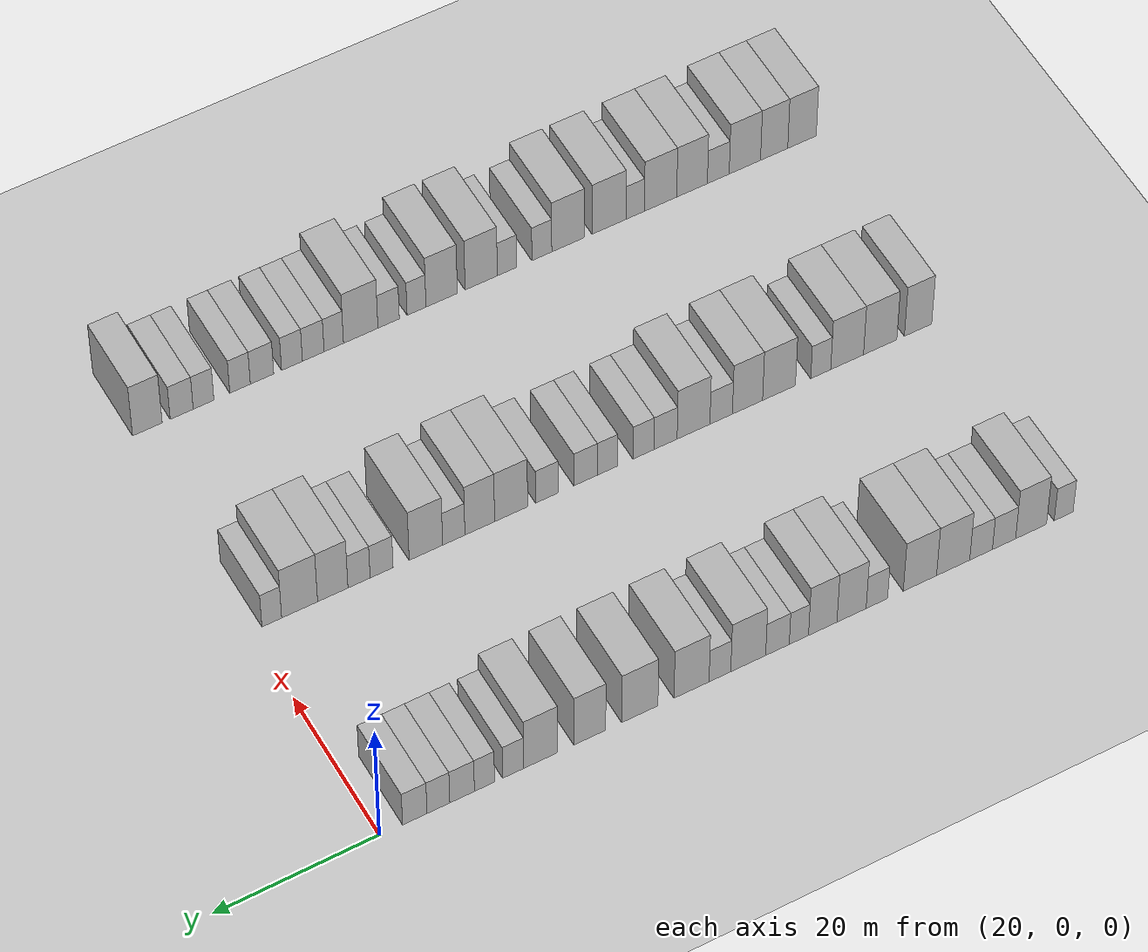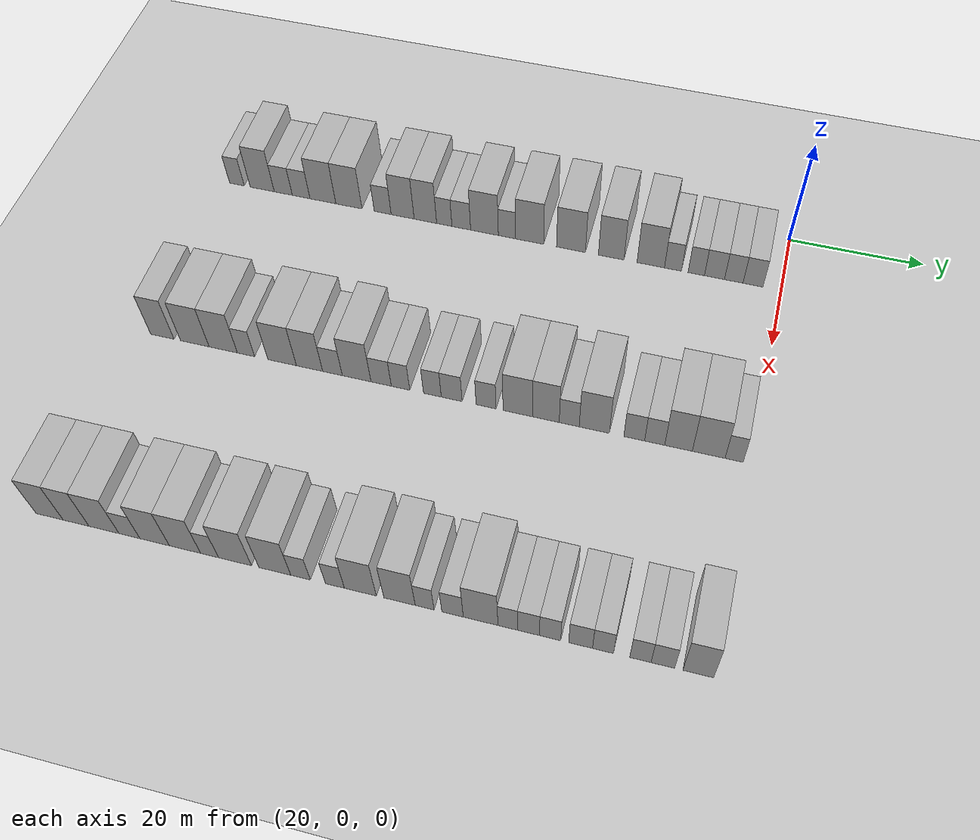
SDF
<sdf version="1.6">
 <world name="default">
  <include><name>ground_plane_1</name><uri>model://HANNAS_ground_plane</uri></include>
  <model name="building_50">
   <static>1</static>
   <pose>25.0000 -85.5815 0 0.000000 0.000000 0.000000</pose>
   <link name="link">
    <pose>0 0 3.00 0 0 0</pose>
    <collision name="collision"><geometry><box><size>10.0000 2.4582 6.0000</size></box></geometry></collision>
    <visual name="visual">
     <cast_shadows>0</cast_shadows>
     <geometry><box><size>10.0000 2.4582 6.0000</size></box></geometry>
     <material>
      <script>
       <uri>model://HANNAS_wall/materials/scripts</uri>
       <uri>model://HANNAS_wall/materials/textures</uri>
       <name>vrc/HANNAS_wall</name>
      </script>
     </material>
    </visual>
   </link>
  </model>
  <model name="building_51">
   <static>1</static>
   <pose>25.0000 -81.3467 0 0.000000 0.000000 0.000000</pose>
   <link name="link">
    <pose>0 0 4.50 0 0 0</pose>
    <collision name="collision"><geometry><box><size>10.0000 4.0113 9.0000</size></box></geometry></collision>
    <visual name="visual">
     <cast_shadows>0</cast_shadows>
     <geometry><box><size>10.0000 4.0113 9.0000</size></box></geometry>
     <material>
      <script>
       <uri>model://HANNAS_wall/materials/scripts</uri>
       <uri>model://HANNAS_wall/materials/textures</uri>
       <name>vrc/HANNAS_wall</name>
      </script>
     </material>
    </visual>
   </link>
  </model>
  <model name="building_52">
   <static>1</static>
   <pose>25.0000 -77.8448 0 0.000000 0.000000 0.000000</pose>
   <link name="link">
    <pose>0 0 3.00 0 0 0</pose>
    <collision name="collision"><geometry><box><size>10.0000 2.9925 6.0000</size></box></geometry></collision>
    <visual name="visual">
     <cast_shadows>0</cast_shadows>
     <geometry><box><size>10.0000 2.9925 6.0000</size></box></geometry>
     <material>
      <script>
       <uri>model://HANNAS_wall/materials/scripts</uri>
       <uri>model://HANNAS_wall/materials/textures</uri>
       <name>vrc/HANNAS_wall</name>
      </script>
     </material>
    </visual>
   </link>
  </model>
  <model name="building_53">
   <static>1</static>
   <pose>25.0000 -74.8836 0 0.000000 0.000000 0.000000</pose>
   <link name="link">
    <pose>0 0 3.00 0 0 0</pose>
    <collision name="collision"><geometry><box><size>10.0000 2.9299 6.0000</size></box></geometry></collision>
    <visual name="visual">
     <cast_shadows>0</cast_shadows>
     <geometry><box><size>10.0000 2.9299 6.0000</size></box></geometry>
     <material>
      <script>
       <uri>model://HANNAS_wall/materials/scripts</uri>
       <uri>model://HANNAS_wall/materials/textures</uri>
       <name>vrc/HANNAS_wall</name>
      </script>
     </material>
    </visual>
   </link>
  </model>
  <model name="building_54">
   <static>1</static>
   <pose>25.0000 -71.2896 0 0.000000 0.000000 0.000000</pose>
   <link name="link">
    <pose>0 0 4.50 0 0 0</pose>
    <collision name="collision"><geometry><box><size>10.0000 4.2580 9.0000</size></box></geometry></collision>
    <visual name="visual">
     <cast_shadows>0</cast_shadows>
     <geometry><box><size>10.0000 4.2580 9.0000</size></box></geometry>
     <material>
      <script>
       <uri>model://HANNAS_wall/materials/scripts</uri>
       <uri>model://HANNAS_wall/materials/textures</uri>
       <name>vrc/HANNAS_wall</name>
      </script>
     </material>
    </visual>
   </link>
  </model>
  <model name="building_55">
   <static>1</static>
   <pose>25.0000 -67.0277 0 0.000000 0.000000 0.000000</pose>
   <link name="link">
    <pose>0 0 4.50 0 0 0</pose>
    <collision name="collision"><geometry><box><size>10.0000 4.2658 9.0000</size></box></geometry></collision>
    <visual name="visual">
     <cast_shadows>0</cast_shadows>
     <geometry><box><size>10.0000 4.2658 9.0000</size></box></geometry>
     <material>
      <script>
       <uri>model://HANNAS_wall/materials/scripts</uri>
       <uri>model://HANNAS_wall/materials/textures</uri>
       <name>vrc/HANNAS_wall</name>
      </script>
     </material>
    </visual>
   </link>
  </model>
  <model name="building_56">
   <static>1</static>
   <pose>25.0000 -61.5255 0 0.000000 0.000000 0.000000</pose>
   <link name="link">
    <pose>0 0 3.00 0 0 0</pose>
    <collision name="collision"><geometry><box><size>10.0000 2.7386 6.0000</size></box></geometry></collision>
    <visual name="visual">
     <cast_shadows>0</cast_shadows>
     <geometry><box><size>10.0000 2.7386 6.0000</size></box></geometry>
     <material>
      <script>
       <uri>model://HANNAS_wall/materials/scripts</uri>
       <uri>model://HANNAS_wall/materials/textures</uri>
       <name>vrc/HANNAS_wall</name>
      </script>
     </material>
    </visual>
   </link>
  </model>
  <model name="building_57">
   <static>1</static>
   <pose>25.0000 -58.3049 0 0.000000 0.000000 0.000000</pose>
   <link name="link">
    <pose>0 0 4.50 0 0 0</pose>
    <collision name="collision"><geometry><box><size>10.0000 3.7026 9.0000</size></box></geometry></collision>
    <visual name="visual">
     <cast_shadows>0</cast_shadows>
     <geometry><box><size>10.0000 3.7026 9.0000</size></box></geometry>
     <material>
      <script>
       <uri>model://HANNAS_wall/materials/scripts</uri>
       <uri>model://HANNAS_wall/materials/textures</uri>
       <name>vrc/HANNAS_wall</name>
      </script>
     </material>
    </visual>
   </link>
  </model>
  <model name="building_58">
   <static>1</static>
   <pose>25.0000 -54.6498 0 0.000000 0.000000 0.000000</pose>
   <link name="link">
    <pose>0 0 4.50 0 0 0</pose>
    <collision name="collision"><geometry><box><size>10.0000 3.6076 9.0000</size></box></geometry></collision>
    <visual name="visual">
     <cast_shadows>0</cast_shadows>
     <geometry><box><size>10.0000 3.6076 9.0000</size></box></geometry>
     <material>
      <script>
       <uri>model://HANNAS_wall/materials/scripts</uri>
       <uri>model://HANNAS_wall/materials/textures</uri>
       <name>vrc/HANNAS_wall</name>
      </script>
     </material>
    </visual>
   </link>
  </model>
  <model name="building_59">
   <static>1</static>
   <pose>25.0000 -51.6305 0 0.000000 0.000000 0.000000</pose>
   <link name="link">
    <pose>0 0 3.00 0 0 0</pose>
    <collision name="collision"><geometry><box><size>10.0000 2.4311 6.0000</size></box></geometry></collision>
    <visual name="visual">
     <cast_shadows>0</cast_shadows>
     <geometry><box><size>10.0000 2.4311 6.0000</size></box></geometry>
     <material>
      <script>
       <uri>model://HANNAS_wall/materials/scripts</uri>
       <uri>model://HANNAS_wall/materials/textures</uri>
       <name>vrc/HANNAS_wall</name>
      </script>
     </material>
    </visual>
   </link>
  </model>
  <model name="building_60">
   <static>1</static>
   <pose>25.0000 -48.9285 0 0.000000 0.000000 0.000000</pose>
   <link name="link">
    <pose>0 0 3.00 0 0 0</pose>
    <collision name="collision"><geometry><box><size>10.0000 2.9728 6.0000</size></box></geometry></collision>
    <visual name="visual">
     <cast_shadows>0</cast_shadows>
     <geometry><box><size>10.0000 2.9728 6.0000</size></box></geometry>
     <material>
      <script>
       <uri>model://HANNAS_wall/materials/scripts</uri>
       <uri>model://HANNAS_wall/materials/textures</uri>
       <name>vrc/HANNAS_wall</name>
      </script>
     </material>
    </visual>
   </link>
  </model>
  <model name="building_61">
   <static>1</static>
   <pose>25.0000 -45.2490 0 0.000000 0.000000 0.000000</pose>
   <link name="link">
    <pose>0 0 4.50 0 0 0</pose>
    <collision name="collision"><geometry><box><size>10.0000 4.3862 9.0000</size></box></geometry></collision>
    <visual name="visual">
     <cast_shadows>0</cast_shadows>
     <geometry><box><size>10.0000 4.3862 9.0000</size></box></geometry>
     <material>
      <script>
       <uri>model://HANNAS_wall/materials/scripts</uri>
       <uri>model://HANNAS_wall/materials/textures</uri>
       <name>vrc/HANNAS_wall</name>
      </script>
     </material>
    </visual>
   </link>
  </model>
  <model name="building_62">
   <static>1</static>
   <pose>25.0000 -41.6981 0 0.000000 0.000000 0.000000</pose>
   <link name="link">
    <pose>0 0 3.00 0 0 0</pose>
    <collision name="collision"><geometry><box><size>10.0000 2.7156 6.0000</size></box></geometry></collision>
    <visual name="visual">
     <cast_shadows>0</cast_shadows>
     <geometry><box><size>10.0000 2.7156 6.0000</size></box></geometry>
     <material>
      <script>
       <uri>model://HANNAS_wall/materials/scripts</uri>
       <uri>model://HANNAS_wall/materials/textures</uri>
       <name>vrc/HANNAS_wall</name>
      </script>
     </material>
    </visual>
   </link>
  </model>
  <model name="building_63">
   <static>1</static>
   <pose>25.0000 -38.1528 0 0.000000 0.000000 0.000000</pose>
   <link name="link">
    <pose>0 0 4.50 0 0 0</pose>
    <collision name="collision"><geometry><box><size>10.0000 4.3749 9.0000</size></box></geometry></collision>
    <visual name="visual">
     <cast_shadows>0</cast_shadows>
     <geometry><box><size>10.0000 4.3749 9.0000</size></box></geometry>
     <material>
      <script>
       <uri>model://HANNAS_wall/materials/scripts</uri>
       <uri>model://HANNAS_wall/materials/textures</uri>
       <name>vrc/HANNAS_wall</name>
      </script>
     </material>
    </visual>
   </link>
  </model>
  <model name="building_64">
   <static>1</static>
   <pose>25.0000 -31.7275 0 0.000000 0.000000 0.000000</pose>
   <link name="link">
    <pose>0 0 4.50 0 0 0</pose>
    <collision name="collision"><geometry><box><size>10.0000 4.4757 9.0000</size></box></geometry></collision>
    <visual name="visual">
     <cast_shadows>0</cast_shadows>
     <geometry><box><size>10.0000 4.4757 9.0000</size></box></geometry>
     <material>
      <script>
       <uri>model://HANNAS_wall/materials/scripts</uri>
       <uri>model://HANNAS_wall/materials/textures</uri>
       <name>vrc/HANNAS_wall</name>
      </script>
     </material>
    </visual>
   </link>
  </model>
  <model name="building_65">
   <static>1</static>
   <pose>25.0000 -25.5301 0 0.000000 0.000000 0.000000</pose>
   <link name="link">
    <pose>0 0 4.50 0 0 0</pose>
    <collision name="collision"><geometry><box><size>10.0000 3.9191 9.0000</size></box></geometry></collision>
    <visual name="visual">
     <cast_shadows>0</cast_shadows>
     <geometry><box><size>10.0000 3.9191 9.0000</size></box></geometry>
     <material>
      <script>
       <uri>model://HANNAS_wall/materials/scripts</uri>
       <uri>model://HANNAS_wall/materials/textures</uri>
       <name>vrc/HANNAS_wall</name>
      </script>
     </material>
    </visual>
   </link>
  </model>
  <model name="building_66">
   <static>1</static>
   <pose>25.0000 -19.4896 0 0.000000 0.000000 0.000000</pose>
   <link name="link">
    <pose>0 0 4.50 0 0 0</pose>
    <collision name="collision"><geometry><box><size>10.0000 4.1618 9.0000</size></box></geometry></collision>
    <visual name="visual">
     <cast_shadows>0</cast_shadows>
     <geometry><box><size>10.0000 4.1618 9.0000</size></box></geometry>
     <material>
      <script>
       <uri>model://HANNAS_wall/materials/scripts</uri>
       <uri>model://HANNAS_wall/materials/textures</uri>
       <name>vrc/HANNAS_wall</name>
      </script>
     </material>
    </visual>
   </link>
  </model>
  <model name="building_67">
   <static>1</static>
   <pose>25.0000 -16.1266 0 0.000000 0.000000 0.000000</pose>
   <link name="link">
    <pose>0 0 3.00 0 0 0</pose>
    <collision name="collision"><geometry><box><size>10.0000 2.5642 6.0000</size></box></geometry></collision>
    <visual name="visual">
     <cast_shadows>0</cast_shadows>
     <geometry><box><size>10.0000 2.5642 6.0000</size></box></geometry>
     <material>
      <script>
       <uri>model://HANNAS_wall/materials/scripts</uri>
       <uri>model://HANNAS_wall/materials/textures</uri>
       <name>vrc/HANNAS_wall</name>
      </script>
     </material>
    </visual>
   </link>
  </model>
  <model name="building_68">
   <static>1</static>
   <pose>25.0000 -12.6173 0 0.000000 0.000000 0.000000</pose>
   <link name="link">
    <pose>0 0 3.00 0 0 0</pose>
    <collision name="collision"><geometry><box><size>10.0000 2.4545 6.0000</size></box></geometry></collision>
    <visual name="visual">
     <cast_shadows>0</cast_shadows>
     <geometry><box><size>10.0000 2.4545 6.0000</size></box></geometry>
     <material>
      <script>
       <uri>model://HANNAS_wall/materials/scripts</uri>
       <uri>model://HANNAS_wall/materials/textures</uri>
       <name>vrc/HANNAS_wall</name>
      </script>
     </material>
    </visual>
   </link>
  </model>
  <model name="building_69">
   <static>1</static>
   <pose>25.0000 -9.8904 0 0.000000 0.000000 0.000000</pose>
   <link name="link">
    <pose>0 0 3.00 0 0 0</pose>
    <collision name="collision"><geometry><box><size>10.0000 2.9993 6.0000</size></box></geometry></collision>
    <visual name="visual">
     <cast_shadows>0</cast_shadows>
     <geometry><box><size>10.0000 2.9993 6.0000</size></box></geometry>
     <material>
      <script>
       <uri>model://HANNAS_wall/materials/scripts</uri>
       <uri>model://HANNAS_wall/materials/textures</uri>
       <name>vrc/HANNAS_wall</name>
      </script>
     </material>
    </visual>
   </link>
  </model>
  <model name="building_70">
   <static>1</static>
   <pose>25.0000 -7.0107 0 0.000000 0.000000 0.000000</pose>
   <link name="link">
    <pose>0 0 3.00 0 0 0</pose>
    <collision name="collision"><geometry><box><size>10.0000 2.7602 6.0000</size></box></geometry></collision>
    <visual name="visual">
     <cast_shadows>0</cast_shadows>
     <geometry><box><size>10.0000 2.7602 6.0000</size></box></geometry>
     <material>
      <script>
       <uri>model://HANNAS_wall/materials/scripts</uri>
       <uri>model://HANNAS_wall/materials/textures</uri>
       <name>vrc/HANNAS_wall</name>
      </script>
     </material>
    </visual>
   </link>
  </model>
  <model name="building_71">
   <static>1</static>
   <pose>25.0000 -4.1523 0 0.000000 0.000000 0.000000</pose>
   <link name="link">
    <pose>0 0 3.00 0 0 0</pose>
    <collision name="collision"><geometry><box><size>10.0000 2.9565 6.0000</size></box></geometry></collision>
    <visual name="visual">
     <cast_shadows>0</cast_shadows>
     <geometry><box><size>10.0000 2.9565 6.0000</size></box></geometry>
     <material>
      <script>
       <uri>model://HANNAS_wall/materials/scripts</uri>
       <uri>model://HANNAS_wall/materials/textures</uri>
       <name>vrc/HANNAS_wall</name>
      </script>
     </material>
    </visual>
   </link>
  </model>
  <model name="building_187">
   <static>1</static>
   <pose>55.0000 -84.8560 0 0.000000 0.000000 0.000000</pose>
   <link name="link">
    <pose>0 0 4.50 0 0 0</pose>
    <collision name="collision"><geometry><box><size>10.0000 3.6039 9.0000</size></box></geometry></collision>
    <visual name="visual">
     <cast_shadows>0</cast_shadows>
     <geometry><box><size>10.0000 3.6039 9.0000</size></box></geometry>
     <material>
      <script>
       <uri>model://HANNAS_wall/materials/scripts</uri>
       <uri>model://HANNAS_wall/materials/textures</uri>
       <name>vrc/HANNAS_wall</name>
      </script>
     </material>
    </visual>
   </link>
  </model>
  <model name="building_188">
   <static>1</static>
   <pose>55.0000 -79.8645 0 0.000000 0.000000 0.000000</pose>
   <link name="link">
    <pose>0 0 4.50 0 0 0</pose>
    <collision name="collision"><geometry><box><size>10.0000 4.3790 9.0000</size></box></geometry></collision>
    <visual name="visual">
     <cast_shadows>0</cast_shadows>
     <geometry><box><size>10.0000 4.3790 9.0000</size></box></geometry>
     <material>
      <script>
       <uri>model://HANNAS_wall/materials/scripts</uri>
       <uri>model://HANNAS_wall/materials/textures</uri>
       <name>vrc/HANNAS_wall</name>
      </script>
     </material>
    </visual>
   </link>
  </model>
  <model name="building_189">
   <static>1</static>
   <pose>55.0000 -75.5214 0 0.000000 0.000000 0.000000</pose>
   <link name="link">
    <pose>0 0 4.50 0 0 0</pose>
    <collision name="collision"><geometry><box><size>10.0000 4.3071 9.0000</size></box></geometry></collision>
    <visual name="visual">
     <cast_shadows>0</cast_shadows>
     <geometry><box><size>10.0000 4.3071 9.0000</size></box></geometry>
     <material>
      <script>
       <uri>model://HANNAS_wall/materials/scripts</uri>
       <uri>model://HANNAS_wall/materials/textures</uri>
       <name>vrc/HANNAS_wall</name>
      </script>
     </material>
    </visual>
   </link>
  </model>
  <model name="building_190">
   <static>1</static>
   <pose>55.0000 -72.0653 0 0.000000 0.000000 0.000000</pose>
   <link name="link">
    <pose>0 0 3.00 0 0 0</pose>
    <collision name="collision"><geometry><box><size>10.0000 2.6052 6.0000</size></box></geometry></collision>
    <visual name="visual">
     <cast_shadows>0</cast_shadows>
     <geometry><box><size>10.0000 2.6052 6.0000</size></box></geometry>
     <material>
      <script>
       <uri>model://HANNAS_wall/materials/scripts</uri>
       <uri>model://HANNAS_wall/materials/textures</uri>
       <name>vrc/HANNAS_wall</name>
      </script>
     </material>
    </visual>
   </link>
  </model>
  <model name="building_191">
   <static>1</static>
   <pose>55.0000 -66.6273 0 0.000000 0.000000 0.000000</pose>
   <link name="link">
    <pose>0 0 4.50 0 0 0</pose>
    <collision name="collision"><geometry><box><size>10.0000 4.2708 9.0000</size></box></geometry></collision>
    <visual name="visual">
     <cast_shadows>0</cast_shadows>
     <geometry><box><size>10.0000 4.2708 9.0000</size></box></geometry>
     <material>
      <script>
       <uri>model://HANNAS_wall/materials/scripts</uri>
       <uri>model://HANNAS_wall/materials/textures</uri>
       <name>vrc/HANNAS_wall</name>
      </script>
     </material>
    </visual>
   </link>
  </model>
  <model name="building_192">
   <static>1</static>
   <pose>55.0000 -62.5365 0 0.000000 0.000000 0.000000</pose>
   <link name="link">
    <pose>0 0 4.50 0 0 0</pose>
    <collision name="collision"><geometry><box><size>10.0000 3.9108 9.0000</size></box></geometry></collision>
    <visual name="visual">
     <cast_shadows>0</cast_shadows>
     <geometry><box><size>10.0000 3.9108 9.0000</size></box></geometry>
     <material>
      <script>
       <uri>model://HANNAS_wall/materials/scripts</uri>
       <uri>model://HANNAS_wall/materials/textures</uri>
       <name>vrc/HANNAS_wall</name>
      </script>
     </material>
    </visual>
   </link>
  </model>
  <model name="building_193">
   <static>1</static>
   <pose>55.0000 -59.1279 0 0.000000 0.000000 0.000000</pose>
   <link name="link">
    <pose>0 0 3.00 0 0 0</pose>
    <collision name="collision"><geometry><box><size>10.0000 2.9063 6.0000</size></box></geometry></collision>
    <visual name="visual">
     <cast_shadows>0</cast_shadows>
     <geometry><box><size>10.0000 2.9063 6.0000</size></box></geometry>
     <material>
      <script>
       <uri>model://HANNAS_wall/materials/scripts</uri>
       <uri>model://HANNAS_wall/materials/textures</uri>
       <name>vrc/HANNAS_wall</name>
      </script>
     </material>
    </visual>
   </link>
  </model>
  <model name="building_194">
   <static>1</static>
   <pose>55.0000 -55.5610 0 0.000000 0.000000 0.000000</pose>
   <link name="link">
    <pose>0 0 4.50 0 0 0</pose>
    <collision name="collision"><geometry><box><size>10.0000 4.2275 9.0000</size></box></geometry></collision>
    <visual name="visual">
     <cast_shadows>0</cast_shadows>
     <geometry><box><size>10.0000 4.2275 9.0000</size></box></geometry>
     <material>
      <script>
       <uri>model://HANNAS_wall/materials/scripts</uri>
       <uri>model://HANNAS_wall/materials/textures</uri>
       <name>vrc/HANNAS_wall</name>
      </script>
     </material>
    </visual>
   </link>
  </model>
  <model name="building_195">
   <static>1</static>
   <pose>55.0000 -51.9637 0 0.000000 0.000000 0.000000</pose>
   <link name="link">
    <pose>0 0 3.00 0 0 0</pose>
    <collision name="collision"><geometry><box><size>10.0000 2.9672 6.0000</size></box></geometry></collision>
    <visual name="visual">
     <cast_shadows>0</cast_shadows>
     <geometry><box><size>10.0000 2.9672 6.0000</size></box></geometry>
     <material>
      <script>
       <uri>model://HANNAS_wall/materials/scripts</uri>
       <uri>model://HANNAS_wall/materials/textures</uri>
       <name>vrc/HANNAS_wall</name>
      </script>
     </material>
    </visual>
   </link>
  </model>
  <model name="building_196">
   <static>1</static>
   <pose>55.0000 -49.1369 0 0.000000 0.000000 0.000000</pose>
   <link name="link">
    <pose>0 0 3.00 0 0 0</pose>
    <collision name="collision"><geometry><box><size>10.0000 2.6863 6.0000</size></box></geometry></collision>
    <visual name="visual">
     <cast_shadows>0</cast_shadows>
     <geometry><box><size>10.0000 2.6863 6.0000</size></box></geometry>
     <material>
      <script>
       <uri>model://HANNAS_wall/materials/scripts</uri>
       <uri>model://HANNAS_wall/materials/textures</uri>
       <name>vrc/HANNAS_wall</name>
      </script>
     </material>
    </visual>
   </link>
  </model>
  <model name="building_197">
   <static>1</static>
   <pose>55.0000 -44.5133 0 0.000000 0.000000 0.000000</pose>
   <link name="link">
    <pose>0 0 3.00 0 0 0</pose>
    <collision name="collision"><geometry><box><size>10.0000 2.5609 6.0000</size></box></geometry></collision>
    <visual name="visual">
     <cast_shadows>0</cast_shadows>
     <geometry><box><size>10.0000 2.5609 6.0000</size></box></geometry>
     <material>
      <script>
       <uri>model://HANNAS_wall/materials/scripts</uri>
       <uri>model://HANNAS_wall/materials/textures</uri>
       <name>vrc/HANNAS_wall</name>
      </script>
     </material>
    </visual>
   </link>
  </model>
  <model name="building_198">
   <static>1</static>
   <pose>55.0000 -41.7354 0 0.000000 0.000000 0.000000</pose>
   <link name="link">
    <pose>0 0 3.00 0 0 0</pose>
    <collision name="collision"><geometry><box><size>10.0000 2.9949 6.0000</size></box></geometry></collision>
    <visual name="visual">
     <cast_shadows>0</cast_shadows>
     <geometry><box><size>10.0000 2.9949 6.0000</size></box></geometry>
     <material>
      <script>
       <uri>model://HANNAS_wall/materials/scripts</uri>
       <uri>model://HANNAS_wall/materials/textures</uri>
       <name>vrc/HANNAS_wall</name>
      </script>
     </material>
    </visual>
   </link>
  </model>
  <model name="building_199">
   <static>1</static>
   <pose>55.0000 -36.8150 0 0.000000 0.000000 0.000000</pose>
   <link name="link">
    <pose>0 0 3.00 0 0 0</pose>
    <collision name="collision"><geometry><box><size>10.0000 2.8458 6.0000</size></box></geometry></collision>
    <visual name="visual">
     <cast_shadows>0</cast_shadows>
     <geometry><box><size>10.0000 2.8458 6.0000</size></box></geometry>
     <material>
      <script>
       <uri>model://HANNAS_wall/materials/scripts</uri>
       <uri>model://HANNAS_wall/materials/textures</uri>
       <name>vrc/HANNAS_wall</name>
      </script>
     </material>
    </visual>
   </link>
  </model>
  <model name="building_200">
   <static>1</static>
   <pose>55.0000 -32.3099 0 0.000000 0.000000 0.000000</pose>
   <link name="link">
    <pose>0 0 4.50 0 0 0</pose>
    <collision name="collision"><geometry><box><size>10.0000 4.1644 9.0000</size></box></geometry></collision>
    <visual name="visual">
     <cast_shadows>0</cast_shadows>
     <geometry><box><size>10.0000 4.1644 9.0000</size></box></geometry>
     <material>
      <script>
       <uri>model://HANNAS_wall/materials/scripts</uri>
       <uri>model://HANNAS_wall/materials/textures</uri>
       <name>vrc/HANNAS_wall</name>
      </script>
     </material>
    </visual>
   </link>
  </model>
  <model name="building_201">
   <static>1</static>
   <pose>55.0000 -28.3588 0 0.000000 0.000000 0.000000</pose>
   <link name="link">
    <pose>0 0 4.50 0 0 0</pose>
    <collision name="collision"><geometry><box><size>10.0000 3.7379 9.0000</size></box></geometry></collision>
    <visual name="visual">
     <cast_shadows>0</cast_shadows>
     <geometry><box><size>10.0000 3.7379 9.0000</size></box></geometry>
     <material>
      <script>
       <uri>model://HANNAS_wall/materials/scripts</uri>
       <uri>model://HANNAS_wall/materials/textures</uri>
       <name>vrc/HANNAS_wall</name>
      </script>
     </material>
    </visual>
   </link>
  </model>
  <model name="building_202">
   <static>1</static>
   <pose>55.0000 -25.0952 0 0.000000 0.000000 0.000000</pose>
   <link name="link">
    <pose>0 0 3.00 0 0 0</pose>
    <collision name="collision"><geometry><box><size>10.0000 2.7893 6.0000</size></box></geometry></collision>
    <visual name="visual">
     <cast_shadows>0</cast_shadows>
     <geometry><box><size>10.0000 2.7893 6.0000</size></box></geometry>
     <material>
      <script>
       <uri>model://HANNAS_wall/materials/scripts</uri>
       <uri>model://HANNAS_wall/materials/textures</uri>
       <name>vrc/HANNAS_wall</name>
      </script>
     </material>
    </visual>
   </link>
  </model>
  <model name="building_203">
   <static>1</static>
   <pose>55.0000 -21.6052 0 0.000000 0.000000 0.000000</pose>
   <link name="link">
    <pose>0 0 4.50 0 0 0</pose>
    <collision name="collision"><geometry><box><size>10.0000 4.1907 9.0000</size></box></geometry></collision>
    <visual name="visual">
     <cast_shadows>0</cast_shadows>
     <geometry><box><size>10.0000 4.1907 9.0000</size></box></geometry>
     <material>
      <script>
       <uri>model://HANNAS_wall/materials/scripts</uri>
       <uri>model://HANNAS_wall/materials/textures</uri>
       <name>vrc/HANNAS_wall</name>
      </script>
     </material>
    </visual>
   </link>
  </model>
  <model name="building_204">
   <static>1</static>
   <pose>55.0000 -16.0800 0 0.000000 0.000000 0.000000</pose>
   <link name="link">
    <pose>0 0 3.00 0 0 0</pose>
    <collision name="collision"><geometry><box><size>10.0000 2.8597 6.0000</size></box></geometry></collision>
    <visual name="visual">
     <cast_shadows>0</cast_shadows>
     <geometry><box><size>10.0000 2.8597 6.0000</size></box></geometry>
     <material>
      <script>
       <uri>model://HANNAS_wall/materials/scripts</uri>
       <uri>model://HANNAS_wall/materials/textures</uri>
       <name>vrc/HANNAS_wall</name>
      </script>
     </material>
    </visual>
   </link>
  </model>
  <model name="building_205">
   <static>1</static>
   <pose>55.0000 -13.2748 0 0.000000 0.000000 0.000000</pose>
   <link name="link">
    <pose>0 0 3.00 0 0 0</pose>
    <collision name="collision"><geometry><box><size>10.0000 2.7507 6.0000</size></box></geometry></collision>
    <visual name="visual">
     <cast_shadows>0</cast_shadows>
     <geometry><box><size>10.0000 2.7507 6.0000</size></box></geometry>
     <material>
      <script>
       <uri>model://HANNAS_wall/materials/scripts</uri>
       <uri>model://HANNAS_wall/materials/textures</uri>
       <name>vrc/HANNAS_wall</name>
      </script>
     </material>
    </visual>
   </link>
  </model>
  <model name="building_206">
   <static>1</static>
   <pose>55.0000 -10.0200 0 0.000000 0.000000 0.000000</pose>
   <link name="link">
    <pose>0 0 4.50 0 0 0</pose>
    <collision name="collision"><geometry><box><size>10.0000 3.7590 9.0000</size></box></geometry></collision>
    <visual name="visual">
     <cast_shadows>0</cast_shadows>
     <geometry><box><size>10.0000 3.7590 9.0000</size></box></geometry>
     <material>
      <script>
       <uri>model://HANNAS_wall/materials/scripts</uri>
       <uri>model://HANNAS_wall/materials/textures</uri>
       <name>vrc/HANNAS_wall</name>
      </script>
     </material>
    </visual>
   </link>
  </model>
  <model name="building_207">
   <static>1</static>
   <pose>55.0000 -5.9255 0 0.000000 0.000000 0.000000</pose>
   <link name="link">
    <pose>0 0 4.50 0 0 0</pose>
    <collision name="collision"><geometry><box><size>10.0000 4.4300 9.0000</size></box></geometry></collision>
    <visual name="visual">
     <cast_shadows>0</cast_shadows>
     <geometry><box><size>10.0000 4.4300 9.0000</size></box></geometry>
     <material>
      <script>
       <uri>model://HANNAS_wall/materials/scripts</uri>
       <uri>model://HANNAS_wall/materials/textures</uri>
       <name>vrc/HANNAS_wall</name>
      </script>
     </material>
    </visual>
   </link>
  </model>
  <model name="building_208">
   <static>1</static>
   <pose>55.0000 -2.4960 0 0.000000 0.000000 0.000000</pose>
   <link name="link">
    <pose>0 0 3.00 0 0 0</pose>
    <collision name="collision"><geometry><box><size>10.0000 2.4292 6.0000</size></box></geometry></collision>
    <visual name="visual">
     <cast_shadows>0</cast_shadows>
     <geometry><box><size>10.0000 2.4292 6.0000</size></box></geometry>
     <material>
      <script>
       <uri>model://HANNAS_wall/materials/scripts</uri>
       <uri>model://HANNAS_wall/materials/textures</uri>
       <name>vrc/HANNAS_wall</name>
      </script>
     </material>
    </visual>
   </link>
  </model>
  <model name="building_325">
   <static>1</static>
   <pose>85.0000 -87.2173 0 0.000000 0.000000 0.000000</pose>
   <link name="link">
    <pose>0 0 4.50 0 0 0</pose>
    <collision name="collision"><geometry><box><size>10.0000 3.8339 9.0000</size></box></geometry></collision>
    <visual name="visual">
     <cast_shadows>0</cast_shadows>
     <geometry><box><size>10.0000 3.8339 9.0000</size></box></geometry>
     <material>
      <script>
       <uri>model://HANNAS_wall/materials/scripts</uri>
       <uri>model://HANNAS_wall/materials/textures</uri>
       <name>vrc/HANNAS_wall</name>
      </script>
     </material>
    </visual>
   </link>
  </model>
  <model name="building_326">
   <static>1</static>
   <pose>85.0000 -83.4764 0 0.000000 0.000000 0.000000</pose>
   <link name="link">
    <pose>0 0 4.50 0 0 0</pose>
    <collision name="collision"><geometry><box><size>10.0000 3.6478 9.0000</size></box></geometry></collision>
    <visual name="visual">
     <cast_shadows>0</cast_shadows>
     <geometry><box><size>10.0000 3.6478 9.0000</size></box></geometry>
     <material>
      <script>
       <uri>model://HANNAS_wall/materials/scripts</uri>
       <uri>model://HANNAS_wall/materials/textures</uri>
       <name>vrc/HANNAS_wall</name>
      </script>
     </material>
    </visual>
   </link>
  </model>
  <model name="building_327">
   <static>1</static>
   <pose>85.0000 -79.5602 0 0.000000 0.000000 0.000000</pose>
   <link name="link">
    <pose>0 0 4.50 0 0 0</pose>
    <collision name="collision"><geometry><box><size>10.0000 4.1847 9.0000</size></box></geometry></collision>
    <visual name="visual">
     <cast_shadows>0</cast_shadows>
     <geometry><box><size>10.0000 4.1847 9.0000</size></box></geometry>
     <material>
      <script>
       <uri>model://HANNAS_wall/materials/scripts</uri>
       <uri>model://HANNAS_wall/materials/textures</uri>
       <name>vrc/HANNAS_wall</name>
      </script>
     </material>
    </visual>
   </link>
  </model>
  <model name="building_328">
   <static>1</static>
   <pose>85.0000 -76.0159 0 0.000000 0.000000 0.000000</pose>
   <link name="link">
    <pose>0 0 3.00 0 0 0</pose>
    <collision name="collision"><geometry><box><size>10.0000 2.9038 6.0000</size></box></geometry></collision>
    <visual name="visual">
     <cast_shadows>0</cast_shadows>
     <geometry><box><size>10.0000 2.9038 6.0000</size></box></geometry>
     <material>
      <script>
       <uri>model://HANNAS_wall/materials/scripts</uri>
       <uri>model://HANNAS_wall/materials/textures</uri>
       <name>vrc/HANNAS_wall</name>
      </script>
     </material>
    </visual>
   </link>
  </model>
  <model name="building_329">
   <static>1</static>
   <pose>85.0000 -72.5268 0 0.000000 0.000000 0.000000</pose>
   <link name="link">
    <pose>0 0 4.50 0 0 0</pose>
    <collision name="collision"><geometry><box><size>10.0000 4.0745 9.0000</size></box></geometry></collision>
    <visual name="visual">
     <cast_shadows>0</cast_shadows>
     <geometry><box><size>10.0000 4.0745 9.0000</size></box></geometry>
     <material>
      <script>
       <uri>model://HANNAS_wall/materials/scripts</uri>
       <uri>model://HANNAS_wall/materials/textures</uri>
       <name>vrc/HANNAS_wall</name>
      </script>
     </material>
    </visual>
   </link>
  </model>
  <model name="building_330">
   <static>1</static>
   <pose>85.0000 -68.3507 0 0.000000 0.000000 0.000000</pose>
   <link name="link">
    <pose>0 0 4.50 0 0 0</pose>
    <collision name="collision"><geometry><box><size>10.0000 4.2777 9.0000</size></box></geometry></collision>
    <visual name="visual">
     <cast_shadows>0</cast_shadows>
     <geometry><box><size>10.0000 4.2777 9.0000</size></box></geometry>
     <material>
      <script>
       <uri>model://HANNAS_wall/materials/scripts</uri>
       <uri>model://HANNAS_wall/materials/textures</uri>
       <name>vrc/HANNAS_wall</name>
      </script>
     </material>
    </visual>
   </link>
  </model>
  <model name="building_331">
   <static>1</static>
   <pose>85.0000 -64.9993 0 0.000000 0.000000 0.000000</pose>
   <link name="link">
    <pose>0 0 3.00 0 0 0</pose>
    <collision name="collision"><geometry><box><size>10.0000 2.4252 6.0000</size></box></geometry></collision>
    <visual name="visual">
     <cast_shadows>0</cast_shadows>
     <geometry><box><size>10.0000 2.4252 6.0000</size></box></geometry>
     <material>
      <script>
       <uri>model://HANNAS_wall/materials/scripts</uri>
       <uri>model://HANNAS_wall/materials/textures</uri>
       <name>vrc/HANNAS_wall</name>
      </script>
     </material>
    </visual>
   </link>
  </model>
  <model name="building_332">
   <static>1</static>
   <pose>85.0000 -61.5544 0 0.000000 0.000000 0.000000</pose>
   <link name="link">
    <pose>0 0 4.50 0 0 0</pose>
    <collision name="collision"><geometry><box><size>10.0000 4.4646 9.0000</size></box></geometry></collision>
    <visual name="visual">
     <cast_shadows>0</cast_shadows>
     <geometry><box><size>10.0000 4.4646 9.0000</size></box></geometry>
     <material>
      <script>
       <uri>model://HANNAS_wall/materials/scripts</uri>
       <uri>model://HANNAS_wall/materials/textures</uri>
       <name>vrc/HANNAS_wall</name>
      </script>
     </material>
    </visual>
   </link>
  </model>
  <model name="building_333">
   <static>1</static>
   <pose>85.0000 -56.1848 0 0.000000 0.000000 0.000000</pose>
   <link name="link">
    <pose>0 0 4.50 0 0 0</pose>
    <collision name="collision"><geometry><box><size>10.0000 4.2747 9.0000</size></box></geometry></collision>
    <visual name="visual">
     <cast_shadows>0</cast_shadows>
     <geometry><box><size>10.0000 4.2747 9.0000</size></box></geometry>
     <material>
      <script>
       <uri>model://HANNAS_wall/materials/scripts</uri>
       <uri>model://HANNAS_wall/materials/textures</uri>
       <name>vrc/HANNAS_wall</name>
      </script>
     </material>
    </visual>
   </link>
  </model>
  <model name="building_334">
   <static>1</static>
   <pose>85.0000 -52.7498 0 0.000000 0.000000 0.000000</pose>
   <link name="link">
    <pose>0 0 3.00 0 0 0</pose>
    <collision name="collision"><geometry><box><size>10.0000 2.5954 6.0000</size></box></geometry></collision>
    <visual name="visual">
     <cast_shadows>0</cast_shadows>
     <geometry><box><size>10.0000 2.5954 6.0000</size></box></geometry>
     <material>
      <script>
       <uri>model://HANNAS_wall/materials/scripts</uri>
       <uri>model://HANNAS_wall/materials/textures</uri>
       <name>vrc/HANNAS_wall</name>
      </script>
     </material>
    </visual>
   </link>
  </model>
  <model name="building_335">
   <static>1</static>
   <pose>85.0000 -48.2031 0 0.000000 0.000000 0.000000</pose>
   <link name="link">
    <pose>0 0 3.00 0 0 0</pose>
    <collision name="collision"><geometry><box><size>10.0000 2.4979 6.0000</size></box></geometry></collision>
    <visual name="visual">
     <cast_shadows>0</cast_shadows>
     <geometry><box><size>10.0000 2.4979 6.0000</size></box></geometry>
     <material>
      <script>
       <uri>model://HANNAS_wall/materials/scripts</uri>
       <uri>model://HANNAS_wall/materials/textures</uri>
       <name>vrc/HANNAS_wall</name>
      </script>
     </material>
    </visual>
   </link>
  </model>
  <model name="building_336">
   <static>1</static>
   <pose>85.0000 -44.8627 0 0.000000 0.000000 0.000000</pose>
   <link name="link">
    <pose>0 0 4.50 0 0 0</pose>
    <collision name="collision"><geometry><box><size>10.0000 4.1831 9.0000</size></box></geometry></collision>
    <visual name="visual">
     <cast_shadows>0</cast_shadows>
     <geometry><box><size>10.0000 4.1831 9.0000</size></box></geometry>
     <material>
      <script>
       <uri>model://HANNAS_wall/materials/scripts</uri>
       <uri>model://HANNAS_wall/materials/textures</uri>
       <name>vrc/HANNAS_wall</name>
      </script>
     </material>
    </visual>
   </link>
  </model>
  <model name="building_337">
   <static>1</static>
   <pose>85.0000 -39.7432 0 0.000000 0.000000 0.000000</pose>
   <link name="link">
    <pose>0 0 4.50 0 0 0</pose>
    <collision name="collision"><geometry><box><size>10.0000 4.0559 9.0000</size></box></geometry></collision>
    <visual name="visual">
     <cast_shadows>0</cast_shadows>
     <geometry><box><size>10.0000 4.0559 9.0000</size></box></geometry>
     <material>
      <script>
       <uri>model://HANNAS_wall/materials/scripts</uri>
       <uri>model://HANNAS_wall/materials/textures</uri>
       <name>vrc/HANNAS_wall</name>
      </script>
     </material>
    </visual>
   </link>
  </model>
  <model name="building_338">
   <static>1</static>
   <pose>85.0000 -36.5010 0 0.000000 0.000000 0.000000</pose>
   <link name="link">
    <pose>0 0 3.00 0 0 0</pose>
    <collision name="collision"><geometry><box><size>10.0000 2.4284 6.0000</size></box></geometry></collision>
    <visual name="visual">
     <cast_shadows>0</cast_shadows>
     <geometry><box><size>10.0000 2.4284 6.0000</size></box></geometry>
     <material>
      <script>
       <uri>model://HANNAS_wall/materials/scripts</uri>
       <uri>model://HANNAS_wall/materials/textures</uri>
       <name>vrc/HANNAS_wall</name>
      </script>
     </material>
    </visual>
   </link>
  </model>
  <model name="building_339">
   <static>1</static>
   <pose>85.0000 -32.9133 0 0.000000 0.000000 0.000000</pose>
   <link name="link">
    <pose>0 0 3.00 0 0 0</pose>
    <collision name="collision"><geometry><box><size>10.0000 2.7469 6.0000</size></box></geometry></collision>
    <visual name="visual">
     <cast_shadows>0</cast_shadows>
     <geometry><box><size>10.0000 2.7469 6.0000</size></box></geometry>
     <material>
      <script>
       <uri>model://HANNAS_wall/materials/scripts</uri>
       <uri>model://HANNAS_wall/materials/textures</uri>
       <name>vrc/HANNAS_wall</name>
      </script>
     </material>
    </visual>
   </link>
  </model>
  <model name="building_340">
   <static>1</static>
   <pose>85.0000 -29.3364 0 0.000000 0.000000 0.000000</pose>
   <link name="link">
    <pose>0 0 4.50 0 0 0</pose>
    <collision name="collision"><geometry><box><size>10.0000 4.4070 9.0000</size></box></geometry></collision>
    <visual name="visual">
     <cast_shadows>0</cast_shadows>
     <geometry><box><size>10.0000 4.4070 9.0000</size></box></geometry>
     <material>
      <script>
       <uri>model://HANNAS_wall/materials/scripts</uri>
       <uri>model://HANNAS_wall/materials/textures</uri>
       <name>vrc/HANNAS_wall</name>
      </script>
     </material>
    </visual>
   </link>
  </model>
  <model name="building_341">
   <static>1</static>
   <pose>85.0000 -25.8979 0 0.000000 0.000000 0.000000</pose>
   <link name="link">
    <pose>0 0 3.00 0 0 0</pose>
    <collision name="collision"><geometry><box><size>10.0000 2.4700 6.0000</size></box></geometry></collision>
    <visual name="visual">
     <cast_shadows>0</cast_shadows>
     <geometry><box><size>10.0000 2.4700 6.0000</size></box></geometry>
     <material>
      <script>
       <uri>model://HANNAS_wall/materials/scripts</uri>
       <uri>model://HANNAS_wall/materials/textures</uri>
       <name>vrc/HANNAS_wall</name>
      </script>
     </material>
    </visual>
   </link>
  </model>
  <model name="building_342">
   <static>1</static>
   <pose>85.0000 -23.2826 0 0.000000 0.000000 0.000000</pose>
   <link name="link">
    <pose>0 0 3.00 0 0 0</pose>
    <collision name="collision"><geometry><box><size>10.0000 2.7605 6.0000</size></box></geometry></collision>
    <visual name="visual">
     <cast_shadows>0</cast_shadows>
     <geometry><box><size>10.0000 2.7605 6.0000</size></box></geometry>
     <material>
      <script>
       <uri>model://HANNAS_wall/materials/scripts</uri>
       <uri>model://HANNAS_wall/materials/textures</uri>
       <name>vrc/HANNAS_wall</name>
      </script>
     </material>
    </visual>
   </link>
  </model>
  <model name="building_343">
   <static>1</static>
   <pose>85.0000 -20.5785 0 0.000000 0.000000 0.000000</pose>
   <link name="link">
    <pose>0 0 3.00 0 0 0</pose>
    <collision name="collision"><geometry><box><size>10.0000 2.6477 6.0000</size></box></geometry></collision>
    <visual name="visual">
     <cast_shadows>0</cast_shadows>
     <geometry><box><size>10.0000 2.6477 6.0000</size></box></geometry>
     <material>
      <script>
       <uri>model://HANNAS_wall/materials/scripts</uri>
       <uri>model://HANNAS_wall/materials/textures</uri>
       <name>vrc/HANNAS_wall</name>
      </script>
     </material>
    </visual>
   </link>
  </model>
  <model name="building_344">
   <static>1</static>
   <pose>85.0000 -16.7747 0 0.000000 0.000000 0.000000</pose>
   <link name="link">
    <pose>0 0 3.00 0 0 0</pose>
    <collision name="collision"><geometry><box><size>10.0000 2.9599 6.0000</size></box></geometry></collision>
    <visual name="visual">
     <cast_shadows>0</cast_shadows>
     <geometry><box><size>10.0000 2.9599 6.0000</size></box></geometry>
     <material>
      <script>
       <uri>model://HANNAS_wall/materials/scripts</uri>
       <uri>model://HANNAS_wall/materials/textures</uri>
       <name>vrc/HANNAS_wall</name>
      </script>
     </material>
    </visual>
   </link>
  </model>
  <model name="building_345">
   <static>1</static>
   <pose>85.0000 -13.9982 0 0.000000 0.000000 0.000000</pose>
   <link name="link">
    <pose>0 0 3.00 0 0 0</pose>
    <collision name="collision"><geometry><box><size>10.0000 2.5930 6.0000</size></box></geometry></collision>
    <visual name="visual">
     <cast_shadows>0</cast_shadows>
     <geometry><box><size>10.0000 2.5930 6.0000</size></box></geometry>
     <material>
      <script>
       <uri>model://HANNAS_wall/materials/scripts</uri>
       <uri>model://HANNAS_wall/materials/textures</uri>
       <name>vrc/HANNAS_wall</name>
      </script>
     </material>
    </visual>
   </link>
  </model>
  <model name="building_346">
   <static>1</static>
   <pose>85.0000 -9.3998 0 0.000000 0.000000 0.000000</pose>
   <link name="link">
    <pose>0 0 3.00 0 0 0</pose>
    <collision name="collision"><geometry><box><size>10.0000 2.6038 6.0000</size></box></geometry></collision>
    <visual name="visual">
     <cast_shadows>0</cast_shadows>
     <geometry><box><size>10.0000 2.6038 6.0000</size></box></geometry>
     <material>
      <script>
       <uri>model://HANNAS_wall/materials/scripts</uri>
       <uri>model://HANNAS_wall/materials/textures</uri>
       <name>vrc/HANNAS_wall</name>
      </script>
     </material>
    </visual>
   </link>
  </model>
  <model name="building_347">
   <static>1</static>
   <pose>85.0000 -6.6528 0 0.000000 0.000000 0.000000</pose>
   <link name="link">
    <pose>0 0 3.00 0 0 0</pose>
    <collision name="collision"><geometry><box><size>10.0000 2.8902 6.0000</size></box></geometry></collision>
    <visual name="visual">
     <cast_shadows>0</cast_shadows>
     <geometry><box><size>10.0000 2.8902 6.0000</size></box></geometry>
     <material>
      <script>
       <uri>model://HANNAS_wall/materials/scripts</uri>
       <uri>model://HANNAS_wall/materials/textures</uri>
       <name>vrc/HANNAS_wall</name>
      </script>
     </material>
    </visual>
   </link>
  </model>
  <model name="building_348">
   <static>1</static>
   <pose>85.0000 -2.3535 0 0.000000 0.000000 0.000000</pose>
   <link name="link">
    <pose>0 0 4.50 0 0 0</pose>
    <collision name="collision"><geometry><box><size>10.0000 3.7083 9.0000</size></box></geometry></collision>
    <visual name="visual">
     <cast_shadows>0</cast_shadows>
     <geometry><box><size>10.0000 3.7083 9.0000</size></box></geometry>
     <material>
      <script>
       <uri>model://HANNAS_wall/materials/scripts</uri>
       <uri>model://HANNAS_wall/materials/textures</uri>
       <name>vrc/HANNAS_wall</name>
      </script>
     </material>
    </visual>
   </link>
  </model>
 </world>
</sdf>
